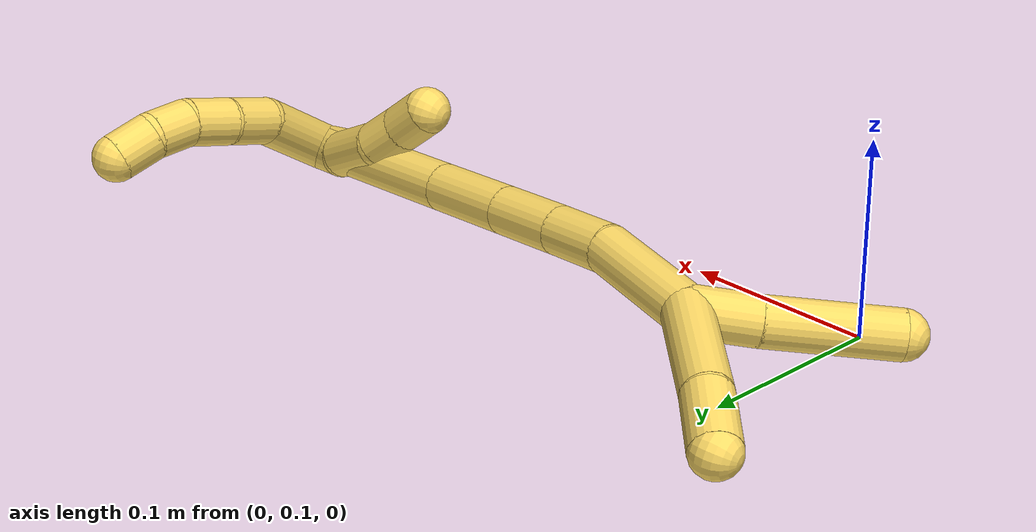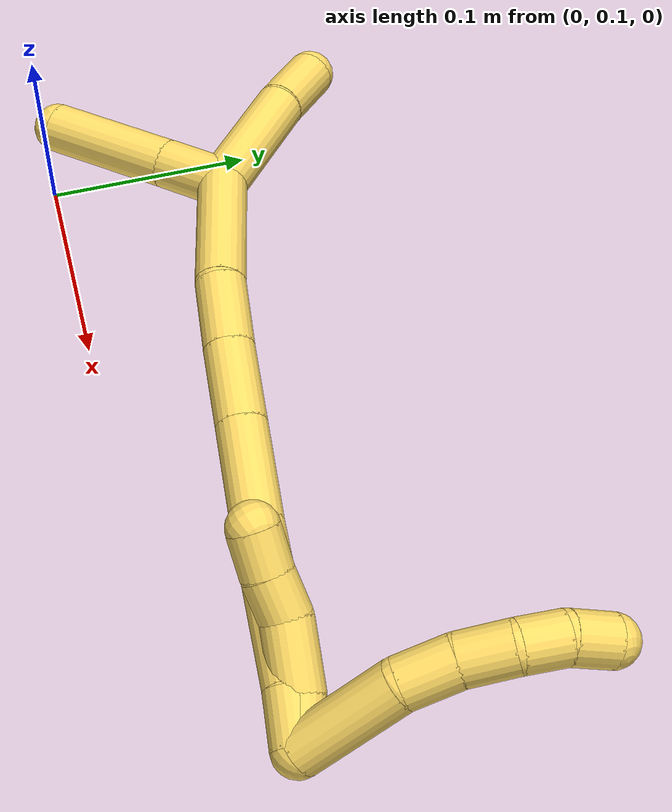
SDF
<sdf version="1.7">
 <world name="default">
  <model name="photoneo_s_sensor">
   <static>1</static>
   <pose>0 0 2 1.57079 1.57079 3.14159</pose>
   <link name="link">
    <inertial><mass>0.1</mass></inertial>
    <sensor name="sensor" type="depth">
     <update_rate>30</update_rate>
     <camera>
      <horizontal_fov>1.22</horizontal_fov>
      <image><width>1920</width><height>1200</height><format>B8G8R8</format></image>
      <clip><near>0.1</near><far>4</far></clip>
      <depth_camera><output>points</output></depth_camera>
     </camera>
     <plugin name="camera_plugin" filename="libgazebo_ros_depth_camera.so">
      <baseline>0.2</baseline>
      <alwaysOn>1</alwaysOn>
      <updateRate>0.0</updateRate>
      <cameraName>camera_ir</cameraName>
      <imageTopicName>/camera/color/image_raw</imageTopicName>
      <cameraInfoTopicName>/camera/color/camera_info</cameraInfoTopicName>
      <depthImageTopicName>/camera/depth/image_raw</depthImageTopicName>
      <depthImageCameraInfoTopicName>/camera/depth/camera_info</depthImageCameraInfoTopicName>
      <pointCloudTopicName>/camera/depth/points</pointCloudTopicName>
      <frameName>fr_optical</frameName>
      <pointCloudCutoff>0.1</pointCloudCutoff>
      <pointCloudCutoffMax>2.0</pointCloudCutoffMax>
      <distortionK1>0</distortionK1>
      <distortionK2>0</distortionK2>
      <distortionK3>0</distortionK3>
      <distortionT1>0</distortionT1>
      <distortionT2>0</distortionT2>
      <CxPrime>0</CxPrime>
      <Cx>0</Cx>
      <Cy>0</Cy>
      <focalLength>0</focalLength>
      <hackBaseline>0</hackBaseline>
     </plugin>
    </sensor>
   </link>
  </model>
  <model name="bin">
   <static>1</static>
   <link name="bottom">
    <collision name="collision-bottom">
     <pose>0 0 -0.01 0 -0 0</pose>
     <geometry><box><size>0.8 0.6 0.02</size></box></geometry>
     <surface>
      <friction><ode><mu>100</mu><mu2>100</mu2></ode></friction>
      <contact><collide_bitmask>65535</collide_bitmask></contact>
     </surface>
    </collision>
   </link>
   <link name="west_wall">
    <collision name="collision-west_wall">
     <pose>-0.41 0 0.1 0 -0 0</pose>
     <geometry><box><size>0.02 0.6 0.2</size></box></geometry>
     <surface>
      <friction><ode><mu>100</mu><mu2>100</mu2></ode></friction>
      <contact><collide_bitmask>65535</collide_bitmask></contact>
     </surface>
    </collision>
   </link>
   <link name="east_wall">
    <collision name="collision-east_wall">
     <pose>0.41 0 0.1 0 -0 0</pose>
     <geometry><box><size>0.02 0.6 0.2</size></box></geometry>
     <surface>
      <friction><ode><mu>100</mu><mu2>100</mu2></ode></friction>
      <contact><collide_bitmask>65535</collide_bitmask></contact>
     </surface>
    </collision>
   </link>
   <link name="south_wall">
    <collision name="collision-south_wall">
     <pose>0 -0.31 0.1 0 -0 0</pose>
     <geometry><box><size>0.8 0.02 0.2</size></box></geometry>
     <surface>
      <friction><ode><mu>100</mu><mu2>100</mu2></ode></friction>
      <contact><collide_bitmask>65535</collide_bitmask></contact>
     </surface>
    </collision>
   </link>
   <link name="north_wall">
    <collision name="collision-north_wall">
     <pose>0 0.31 0.1 0 -0 0</pose>
     <geometry><box><size>0.8 0.02 0.2</size></box></geometry>
     <surface>
      <friction><ode><mu>100</mu><mu2>100</mu2></ode></friction>
      <contact><collide_bitmask>65535</collide_bitmask></contact>
     </surface>
    </collision>
   </link>
  </model>
  <model name="5">
   <static>0</static>
   <link name="5">
    <collision name="collision-cylinder-e_1_2_8">
     <pose>-0.009611 0.02528 0.00412 -1.40923 -0.35896 0.306097</pose>
     <geometry><cylinder><radius>0.0125</radius><length>0.054714</length></cylinder></geometry>
     <surface>
      <friction><ode><mu>1.16</mu><mu2>1.16</mu2><slip1>0</slip1><slip2>0</slip2></ode></friction>
      <contact><ode><kp>1e+06</kp><kd>1</kd><max_vel>0</max_vel><min_depth>0.001</min_depth></ode></contact>
     </surface>
    </collision>
    <visual name="visual-cylinder-e_1_2_8">
     <pose>-0.009611 0.02528 0.00412 -1.40923 -0.35896 0.306097</pose>
     <geometry><cylinder><radius>0.0125</radius><length>0.054714</length></cylinder></geometry>
     <material><ambient>1 0.858824 0.4 1</ambient></material>
    </visual>
    <collision name="collision-cylinder-e_2_8_9">
     <pose>-0.019759 0.063544 0.010931 -1.36649 -0.040521 0.032988</pose>
     <geometry><cylinder><radius>0.0125</radius><length>0.026541</length></cylinder></geometry>
     <surface>
      <friction><ode><mu>1.16</mu><mu2>1.16</mu2><slip1>0</slip1><slip2>0</slip2></ode></friction>
      <contact><ode><kp>1e+06</kp><kd>1</kd><max_vel>0</max_vel><min_depth>0.001</min_depth></ode></contact>
     </surface>
    </collision>
    <visual name="visual-cylinder-e_2_8_9">
     <pose>-0.019759 0.063544 0.010931 -1.36649 -0.040521 0.032988</pose>
     <geometry><cylinder><radius>0.0125</radius><length>0.026541</length></cylinder></geometry>
     <material><ambient>1 0.858824 0.4 1</ambient></material>
    </visual>
    <collision name="collision-cylinder-e_3_9_10">
     <pose>-0.020076 0.088414 0.01796 -1.22078 0.017405 -0.012175</pose>
     <geometry><cylinder><radius>0.0125</radius><length>0.02531</length></cylinder></geometry>
     <surface>
      <friction><ode><mu>1.16</mu><mu2>1.16</mu2><slip1>0</slip1><slip2>0</slip2></ode></friction>
      <contact><ode><kp>1e+06</kp><kd>1</kd><max_vel>0</max_vel><min_depth>0.001</min_depth></ode></contact>
     </surface>
    </collision>
    <visual name="visual-cylinder-e_3_9_10">
     <pose>-0.020076 0.088414 0.01796 -1.22078 0.017405 -0.012175</pose>
     <geometry><cylinder><radius>0.0125</radius><length>0.02531</length></cylinder></geometry>
     <material><ambient>1 0.858824 0.4 1</ambient></material>
    </visual>
    <collision name="collision-cylinder-e_4_10_11">
     <pose>-0.016681 0.110424 0.024913 -1.31818 0.294756 -0.228994</pose>
     <geometry><cylinder><radius>0.0125</radius><length>0.021855</length></cylinder></geometry>
     <surface>
      <friction><ode><mu>1.16</mu><mu2>1.16</mu2><slip1>0</slip1><slip2>0</slip2></ode></friction>
      <contact><ode><kp>1e+06</kp><kd>1</kd><max_vel>0</max_vel><min_depth>0.001</min_depth></ode></contact>
     </surface>
    </collision>
    <visual name="visual-cylinder-e_4_10_11">
     <pose>-0.016681 0.110424 0.024913 -1.31818 0.294756 -0.228994</pose>
     <geometry><cylinder><radius>0.0125</radius><length>0.021855</length></cylinder></geometry>
     <material><ambient>1 0.858824 0.4 1</ambient></material>
    </visual>
    <collision name="collision-cylinder-e_5_11_6">
     <pose>-0.007601 0.128936 0.030871 -1.19133 0.579271 -0.39862</pose>
     <geometry><cylinder><radius>0.0125</radius><length>0.021579</length></cylinder></geometry>
     <surface>
      <friction><ode><mu>1.16</mu><mu2>1.16</mu2><slip1>0</slip1><slip2>0</slip2></ode></friction>
      <contact><ode><kp>1e+06</kp><kd>1</kd><max_vel>0</max_vel><min_depth>0.001</min_depth></ode></contact>
     </surface>
    </collision>
    <visual name="visual-cylinder-e_5_11_6">
     <pose>-0.007601 0.128936 0.030871 -1.19133 0.579271 -0.39862</pose>
     <geometry><cylinder><radius>0.0125</radius><length>0.021579</length></cylinder></geometry>
     <material><ambient>1 0.858824 0.4 1</ambient></material>
    </visual>
    <collision name="collision-cylinder-e_1_2_12">
     <pose>-0.002332 0.006061 -0.009933 -2.59375 -0.197763 0.678801</pose>
     <geometry><cylinder><radius>0.0125</radius><length>0.023735</length></cylinder></geometry>
     <surface>
      <friction><ode><mu>1.16</mu><mu2>1.16</mu2><slip1>0</slip1><slip2>0</slip2></ode></friction>
      <contact><ode><kp>1e+06</kp><kd>1</kd><max_vel>0</max_vel><min_depth>0.001</min_depth></ode></contact>
     </surface>
    </collision>
    <visual name="visual-cylinder-e_1_2_12">
     <pose>-0.002332 0.006061 -0.009933 -2.59375 -0.197763 0.678801</pose>
     <geometry><cylinder><radius>0.0125</radius><length>0.023735</length></cylinder></geometry>
     <material><ambient>1 0.858824 0.4 1</ambient></material>
    </visual>
    <collision name="collision-cylinder-e_2_12_13">
     <pose>-0.012939 0.018451 -0.033158 -2.69718 -0.512125 1.71763</pose>
     <geometry><cylinder><radius>0.0125</radius><length>0.033776</length></cylinder></geometry>
     <surface>
      <friction><ode><mu>1.16</mu><mu2>1.16</mu2><slip1>0</slip1><slip2>0</slip2></ode></friction>
      <contact><ode><kp>1e+06</kp><kd>1</kd><max_vel>0</max_vel><min_depth>0.001</min_depth></ode></contact>
     </surface>
    </collision>
    <visual name="visual-cylinder-e_2_12_13">
     <pose>-0.012939 0.018451 -0.033158 -2.69718 -0.512125 1.71763</pose>
     <geometry><cylinder><radius>0.0125</radius><length>0.033776</length></cylinder></geometry>
     <material><ambient>1 0.858824 0.4 1</ambient></material>
    </visual>
    <collision name="collision-cylinder-e_3_13_14">
     <pose>-0.028772 0.02609 -0.05387 -2.96685 -0.786826 2.72562</pose>
     <geometry><cylinder><radius>0.0125</radius><length>0.021344</length></cylinder></geometry>
     <surface>
      <friction><ode><mu>1.16</mu><mu2>1.16</mu2><slip1>0</slip1><slip2>0</slip2></ode></friction>
      <contact><ode><kp>1e+06</kp><kd>1</kd><max_vel>0</max_vel><min_depth>0.001</min_depth></ode></contact>
     </surface>
    </collision>
    <visual name="visual-cylinder-e_3_13_14">
     <pose>-0.028772 0.02609 -0.05387 -2.96685 -0.786826 2.72562</pose>
     <geometry><cylinder><radius>0.0125</radius><length>0.021344</length></cylinder></geometry>
     <material><ambient>1 0.858824 0.4 1</ambient></material>
    </visual>
    <collision name="collision-cylinder-e_4_14_5">
     <pose>-0.043695 0.029753 -0.0685 -2.82605 -0.770831 2.39418</pose>
     <geometry><cylinder><radius>0.0125</radius><length>0.021145</length></cylinder></geometry>
     <surface>
      <friction><ode><mu>1.16</mu><mu2>1.16</mu2><slip1>0</slip1><slip2>0</slip2></ode></friction>
      <contact><ode><kp>1e+06</kp><kd>1</kd><max_vel>0</max_vel><min_depth>0.001</min_depth></ode></contact>
     </surface>
    </collision>
    <visual name="visual-cylinder-e_4_14_5">
     <pose>-0.043695 0.029753 -0.0685 -2.82605 -0.770831 2.39418</pose>
     <geometry><cylinder><radius>0.0125</radius><length>0.021145</length></cylinder></geometry>
     <material><ambient>1 0.858824 0.4 1</ambient></material>
    </visual>
    <collision name="collision-cylinder-e_1_2_15">
     <pose>-0.003327 0.005281 -0.012017 -2.72755 -0.248274 1.07214</pose>
     <geometry><cylinder><radius>0.0125</radius><length>0.027082</length></cylinder></geometry>
     <surface>
      <friction><ode><mu>1.16</mu><mu2>1.16</mu2><slip1>0</slip1><slip2>0</slip2></ode></friction>
      <contact><ode><kp>1e+06</kp><kd>1</kd><max_vel>0</max_vel><min_depth>0.001</min_depth></ode></contact>
     </surface>
    </collision>
    <visual name="visual-cylinder-e_1_2_15">
     <pose>-0.003327 0.005281 -0.012017 -2.72755 -0.248274 1.07214</pose>
     <geometry><cylinder><radius>0.0125</radius><length>0.027082</length></cylinder></geometry>
     <material><ambient>1 0.858824 0.4 1</ambient></material>
    </visual>
    <collision name="collision-cylinder-e_2_15_16">
     <pose>-0.012078 0.023255 -0.061125 -2.81185 -0.137457 0.784565</pose>
     <geometry><cylinder><radius>0.0125</radius><length>0.079153</length></cylinder></geometry>
     <surface>
      <friction><ode><mu>1.16</mu><mu2>1.16</mu2><slip1>0</slip1><slip2>0</slip2></ode></friction>
      <contact><ode><kp>1e+06</kp><kd>1</kd><max_vel>0</max_vel><min_depth>0.001</min_depth></ode></contact>
     </surface>
    </collision>
    <visual name="visual-cylinder-e_2_15_16">
     <pose>-0.012078 0.023255 -0.061125 -2.81185 -0.137457 0.784565</pose>
     <geometry><cylinder><radius>0.0125</radius><length>0.079153</length></cylinder></geometry>
     <material><ambient>1 0.858824 0.4 1</ambient></material>
    </visual>
    <collision name="collision-cylinder-e_3_16_17">
     <pose>-0.021216 0.044862 -0.121637 -2.77798 -0.147185 0.762814</pose>
     <geometry><cylinder><radius>0.0125</radius><length>0.050665</length></cylinder></geometry>
     <surface>
      <friction><ode><mu>1.16</mu><mu2>1.16</mu2><slip1>0</slip1><slip2>0</slip2></ode></friction>
      <contact><ode><kp>1e+06</kp><kd>1</kd><max_vel>0</max_vel><min_depth>0.001</min_depth></ode></contact>
     </surface>
    </collision>
    <visual name="visual-cylinder-e_3_16_17">
     <pose>-0.021216 0.044862 -0.121637 -2.77798 -0.147185 0.762814</pose>
     <geometry><cylinder><radius>0.0125</radius><length>0.050665</length></cylinder></geometry>
     <material><ambient>1 0.858824 0.4 1</ambient></material>
    </visual>
    <collision name="collision-cylinder-e_4_17_18">
     <pose>-0.027911 0.061003 -0.164095 -2.77869 -0.145275 0.755153</pose>
     <geometry><cylinder><radius>0.0125</radius><length>0.041163</length></cylinder></geometry>
     <surface>
      <friction><ode><mu>1.16</mu><mu2>1.16</mu2><slip1>0</slip1><slip2>0</slip2></ode></friction>
      <contact><ode><kp>1e+06</kp><kd>1</kd><max_vel>0</max_vel><min_depth>0.001</min_depth></ode></contact>
     </surface>
    </collision>
    <visual name="visual-cylinder-e_4_17_18">
     <pose>-0.027911 0.061003 -0.164095 -2.77869 -0.145275 0.755153</pose>
     <geometry><cylinder><radius>0.0125</radius><length>0.041163</length></cylinder></geometry>
     <material><ambient>1 0.858824 0.4 1</ambient></material>
    </visual>
    <collision name="collision-cylinder-e_5_18_19">
     <pose>-0.033491 0.075059 -0.199821 -2.75329 -0.143257 0.699786</pose>
     <geometry><cylinder><radius>0.0125</radius><length>0.036434</length></cylinder></geometry>
     <surface>
      <friction><ode><mu>1.16</mu><mu2>1.16</mu2><slip1>0</slip1><slip2>0</slip2></ode></friction>
      <contact><ode><kp>1e+06</kp><kd>1</kd><max_vel>0</max_vel><min_depth>0.001</min_depth></ode></contact>
     </surface>
    </collision>
    <visual name="visual-cylinder-e_5_18_19">
     <pose>-0.033491 0.075059 -0.199821 -2.75329 -0.143257 0.699786</pose>
     <geometry><cylinder><radius>0.0125</radius><length>0.036434</length></cylinder></geometry>
     <material><ambient>1 0.858824 0.4 1</ambient></material>
    </visual>
    <collision name="collision-cylinder-e_6_19_1">
     <pose>-0.034814 0.096727 -0.245677 -2.67092 0.039007 -0.162342</pose>
     <geometry><cylinder><radius>0.0125</radius><length>0.065503</length></cylinder></geometry>
     <surface>
      <friction><ode><mu>1.16</mu><mu2>1.16</mu2><slip1>0</slip1><slip2>0</slip2></ode></friction>
      <contact><ode><kp>1e+06</kp><kd>1</kd><max_vel>0</max_vel><min_depth>0.001</min_depth></ode></contact>
     </surface>
    </collision>
    <visual name="visual-cylinder-e_6_19_1">
     <pose>-0.034814 0.096727 -0.245677 -2.67092 0.039007 -0.162342</pose>
     <geometry><cylinder><radius>0.0125</radius><length>0.065503</length></cylinder></geometry>
     <material><ambient>1 0.858824 0.4 1</ambient></material>
    </visual>
    <collision name="collision-cylinder-e_1_1_20">
     <pose>-0.026735 0.136748 -0.294437 -2.23203 0.210073 -0.424711</pose>
     <geometry><cylinder><radius>0.0125</radius><length>0.065243</length></cylinder></geometry>
     <surface>
      <friction><ode><mu>1.16</mu><mu2>1.16</mu2><slip1>0</slip1><slip2>0</slip2></ode></friction>
      <contact><ode><kp>1e+06</kp><kd>1</kd><max_vel>0</max_vel><min_depth>0.001</min_depth></ode></contact>
     </surface>
    </collision>
    <visual name="visual-cylinder-e_1_1_20">
     <pose>-0.026735 0.136748 -0.294437 -2.23203 0.210073 -0.424711</pose>
     <geometry><cylinder><radius>0.0125</radius><length>0.065243</length></cylinder></geometry>
     <material><ambient>1 0.858824 0.4 1</ambient></material>
    </visual>
    <collision name="collision-cylinder-e_2_20_4">
     <pose>-0.014054 0.174815 -0.324099 -2.23407 0.34505 -0.686332</pose>
     <geometry><cylinder><radius>0.0125</radius><length>0.034757</length></cylinder></geometry>
     <surface>
      <friction><ode><mu>1.16</mu><mu2>1.16</mu2><slip1>0</slip1><slip2>0</slip2></ode></friction>
      <contact><ode><kp>1e+06</kp><kd>1</kd><max_vel>0</max_vel><min_depth>0.001</min_depth></ode></contact>
     </surface>
    </collision>
    <visual name="visual-cylinder-e_2_20_4">
     <pose>-0.014054 0.174815 -0.324099 -2.23407 0.34505 -0.686332</pose>
     <geometry><cylinder><radius>0.0125</radius><length>0.034757</length></cylinder></geometry>
     <material><ambient>1 0.858824 0.4 1</ambient></material>
    </visual>
    <collision name="collision-cylinder-e_1_1_21">
     <pose>-0.034623 0.102656 -0.289066 2.58182 -0.064603 -0.2239</pose>
     <geometry><cylinder><radius>0.0125</radius><length>0.033635</length></cylinder></geometry>
     <surface>
      <friction><ode><mu>1.16</mu><mu2>1.16</mu2><slip1>0</slip1><slip2>0</slip2></ode></friction>
      <contact><ode><kp>1e+06</kp><kd>1</kd><max_vel>0</max_vel><min_depth>0.001</min_depth></ode></contact>
     </surface>
    </collision>
    <visual name="visual-cylinder-e_1_1_21">
     <pose>-0.034623 0.102656 -0.289066 2.58182 -0.064603 -0.2239</pose>
     <geometry><cylinder><radius>0.0125</radius><length>0.033635</length></cylinder></geometry>
     <material><ambient>1 0.858824 0.4 1</ambient></material>
    </visual>
    <collision name="collision-cylinder-e_2_21_3">
     <pose>-0.039198 0.075326 -0.330666 2.5494 -0.105359 -0.342304</pose>
     <geometry><cylinder><radius>0.0125</radius><length>0.066365</length></cylinder></geometry>
     <surface>
      <friction><ode><mu>1.16</mu><mu2>1.16</mu2><slip1>0</slip1><slip2>0</slip2></ode></friction>
      <contact><ode><kp>1e+06</kp><kd>1</kd><max_vel>0</max_vel><min_depth>0.001</min_depth></ode></contact>
     </surface>
    </collision>
    <visual name="visual-cylinder-e_2_21_3">
     <pose>-0.039198 0.075326 -0.330666 2.5494 -0.105359 -0.342304</pose>
     <geometry><cylinder><radius>0.0125</radius><length>0.066365</length></cylinder></geometry>
     <material><ambient>1 0.858824 0.4 1</ambient></material>
    </visual>
    <collision name="collision-sphere-3">
     <pose>-0.042688 0.056907 -0.358046 0 -0 0</pose>
     <geometry><sphere><radius>0.0125</radius></sphere></geometry>
     <surface>
      <friction><ode><mu>1.16</mu><mu2>1.16</mu2><slip1>0</slip1><slip2>0</slip2></ode></friction>
      <contact><ode><kp>1e+06</kp><kd>1</kd><max_vel>0</max_vel><min_depth>0.001</min_depth></ode></contact>
     </surface>
    </collision>
    <visual name="visual-sphere-3">
     <pose>-0.042688 0.056907 -0.358046 0 -0 0</pose>
     <geometry><sphere><radius>0.0125</radius></sphere></geometry>
     <material><ambient>1 0.858824 0.4 1</ambient></material>
    </visual>
    <collision name="collision-sphere-21">
     <pose>-0.035709 0.093745 -0.303287 0 -0 0</pose>
     <geometry><sphere><radius>0.0125</radius></sphere></geometry>
     <surface>
      <friction><ode><mu>1.16</mu><mu2>1.16</mu2><slip1>0</slip1><slip2>0</slip2></ode></friction>
      <contact><ode><kp>1e+06</kp><kd>1</kd><max_vel>0</max_vel><min_depth>0.001</min_depth></ode></contact>
     </surface>
    </collision>
    <visual name="visual-sphere-21">
     <pose>-0.035709 0.093745 -0.303287 0 -0 0</pose>
     <geometry><sphere><radius>0.0125</radius></sphere></geometry>
     <material><ambient>1 0.858824 0.4 1</ambient></material>
    </visual>
    <collision name="collision-sphere-4">
     <pose>-0.008176 0.187701 -0.334168 0 -0 0</pose>
     <geometry><sphere><radius>0.0125</radius></sphere></geometry>
     <surface>
      <friction><ode><mu>1.16</mu><mu2>1.16</mu2><slip1>0</slip1><slip2>0</slip2></ode></friction>
      <contact><ode><kp>1e+06</kp><kd>1</kd><max_vel>0</max_vel><min_depth>0.001</min_depth></ode></contact>
     </surface>
    </collision>
    <visual name="visual-sphere-4">
     <pose>-0.008176 0.187701 -0.334168 0 -0 0</pose>
     <geometry><sphere><radius>0.0125</radius></sphere></geometry>
     <material><ambient>1 0.858824 0.4 1</ambient></material>
    </visual>
    <collision name="collision-sphere-20">
     <pose>-0.019932 0.161928 -0.314029 0 -0 0</pose>
     <geometry><sphere><radius>0.0125</radius></sphere></geometry>
     <surface>
      <friction><ode><mu>1.16</mu><mu2>1.16</mu2><slip1>0</slip1><slip2>0</slip2></ode></friction>
      <contact><ode><kp>1e+06</kp><kd>1</kd><max_vel>0</max_vel><min_depth>0.001</min_depth></ode></contact>
     </surface>
    </collision>
    <visual name="visual-sphere-20">
     <pose>-0.019932 0.161928 -0.314029 0 -0 0</pose>
     <geometry><sphere><radius>0.0125</radius></sphere></geometry>
     <material><ambient>1 0.858824 0.4 1</ambient></material>
    </visual>
    <collision name="collision-sphere-6">
     <pose>-0.001694 0.137323 0.034215 0 -0 0</pose>
     <geometry><sphere><radius>0.0125</radius></sphere></geometry>
     <surface>
      <friction><ode><mu>1.16</mu><mu2>1.16</mu2><slip1>0</slip1><slip2>0</slip2></ode></friction>
      <contact><ode><kp>1e+06</kp><kd>1</kd><max_vel>0</max_vel><min_depth>0.001</min_depth></ode></contact>
     </surface>
    </collision>
    <visual name="visual-sphere-6">
     <pose>-0.001694 0.137323 0.034215 0 -0 0</pose>
     <geometry><sphere><radius>0.0125</radius></sphere></geometry>
     <material><ambient>1 0.858824 0.4 1</ambient></material>
    </visual>
    <collision name="collision-sphere-11">
     <pose>-0.013507 0.120548 0.027526 0 -0 0</pose>
     <geometry><sphere><radius>0.0125</radius></sphere></geometry>
     <surface>
      <friction><ode><mu>1.16</mu><mu2>1.16</mu2><slip1>0</slip1><slip2>0</slip2></ode></friction>
      <contact><ode><kp>1e+06</kp><kd>1</kd><max_vel>0</max_vel><min_depth>0.001</min_depth></ode></contact>
     </surface>
    </collision>
    <visual name="visual-sphere-11">
     <pose>-0.013507 0.120548 0.027526 0 -0 0</pose>
     <geometry><sphere><radius>0.0125</radius></sphere></geometry>
     <material><ambient>1 0.858824 0.4 1</ambient></material>
    </visual>
    <collision name="collision-sphere-10">
     <pose>-0.019856 0.1003 0.022299 0 -0 0</pose>
     <geometry><sphere><radius>0.0125</radius></sphere></geometry>
     <surface>
      <friction><ode><mu>1.16</mu><mu2>1.16</mu2><slip1>0</slip1><slip2>0</slip2></ode></friction>
      <contact><ode><kp>1e+06</kp><kd>1</kd><max_vel>0</max_vel><min_depth>0.001</min_depth></ode></contact>
     </surface>
    </collision>
    <visual name="visual-sphere-10">
     <pose>-0.019856 0.1003 0.022299 0 -0 0</pose>
     <geometry><sphere><radius>0.0125</radius></sphere></geometry>
     <material><ambient>1 0.858824 0.4 1</ambient></material>
    </visual>
    <collision name="collision-sphere-9">
     <pose>-0.020296 0.076528 0.013621 0 -0 0</pose>
     <geometry><sphere><radius>0.0125</radius></sphere></geometry>
     <surface>
      <friction><ode><mu>1.16</mu><mu2>1.16</mu2><slip1>0</slip1><slip2>0</slip2></ode></friction>
      <contact><ode><kp>1e+06</kp><kd>1</kd><max_vel>0</max_vel><min_depth>0.001</min_depth></ode></contact>
     </surface>
    </collision>
    <visual name="visual-sphere-9">
     <pose>-0.020296 0.076528 0.013621 0 -0 0</pose>
     <geometry><sphere><radius>0.0125</radius></sphere></geometry>
     <material><ambient>1 0.858824 0.4 1</ambient></material>
    </visual>
    <collision name="collision-sphere-2">
     <geometry><sphere><radius>0.0125</radius></sphere></geometry>
     <surface>
      <friction><ode><mu>1.16</mu><mu2>1.16</mu2><slip1>0</slip1><slip2>0</slip2></ode></friction>
      <contact><ode><kp>1e+06</kp><kd>1</kd><max_vel>0</max_vel><min_depth>0.001</min_depth></ode></contact>
     </surface>
    </collision>
    <visual name="visual-sphere-2">
     <geometry><sphere><radius>0.0125</radius></sphere></geometry>
     <material><ambient>1 0.858824 0.4 1</ambient></material>
    </visual>
    <collision name="collision-sphere-19">
     <pose>-0.036092 0.081886 -0.216509 0 -0 0</pose>
     <geometry><sphere><radius>0.0125</radius></sphere></geometry>
     <surface>
      <friction><ode><mu>1.16</mu><mu2>1.16</mu2><slip1>0</slip1><slip2>0</slip2></ode></friction>
      <contact><ode><kp>1e+06</kp><kd>1</kd><max_vel>0</max_vel><min_depth>0.001</min_depth></ode></contact>
     </surface>
    </collision>
    <visual name="visual-sphere-19">
     <pose>-0.036092 0.081886 -0.216509 0 -0 0</pose>
     <geometry><sphere><radius>0.0125</radius></sphere></geometry>
     <material><ambient>1 0.858824 0.4 1</ambient></material>
    </visual>
    <collision name="collision-sphere-8">
     <pose>-0.019221 0.05056 0.008241 0 -0 0</pose>
     <geometry><sphere><radius>0.0125</radius></sphere></geometry>
     <surface>
      <friction><ode><mu>1.16</mu><mu2>1.16</mu2><slip1>0</slip1><slip2>0</slip2></ode></friction>
      <contact><ode><kp>1e+06</kp><kd>1</kd><max_vel>0</max_vel><min_depth>0.001</min_depth></ode></contact>
     </surface>
    </collision>
    <visual name="visual-sphere-8">
     <pose>-0.019221 0.05056 0.008241 0 -0 0</pose>
     <geometry><sphere><radius>0.0125</radius></sphere></geometry>
     <material><ambient>1 0.858824 0.4 1</ambient></material>
    </visual>
    <collision name="collision-sphere-12">
     <pose>-0.004663 0.012121 -0.019867 0 -0 0</pose>
     <geometry><sphere><radius>0.0125</radius></sphere></geometry>
     <surface>
      <friction><ode><mu>1.16</mu><mu2>1.16</mu2><slip1>0</slip1><slip2>0</slip2></ode></friction>
      <contact><ode><kp>1e+06</kp><kd>1</kd><max_vel>0</max_vel><min_depth>0.001</min_depth></ode></contact>
     </surface>
    </collision>
    <visual name="visual-sphere-12">
     <pose>-0.004663 0.012121 -0.019867 0 -0 0</pose>
     <geometry><sphere><radius>0.0125</radius></sphere></geometry>
     <material><ambient>1 0.858824 0.4 1</ambient></material>
    </visual>
    <collision name="collision-sphere-13">
     <pose>-0.021215 0.02478 -0.046449 0 -0 0</pose>
     <geometry><sphere><radius>0.0125</radius></sphere></geometry>
     <surface>
      <friction><ode><mu>1.16</mu><mu2>1.16</mu2><slip1>0</slip1><slip2>0</slip2></ode></friction>
      <contact><ode><kp>1e+06</kp><kd>1</kd><max_vel>0</max_vel><min_depth>0.001</min_depth></ode></contact>
     </surface>
    </collision>
    <visual name="visual-sphere-13">
     <pose>-0.021215 0.02478 -0.046449 0 -0 0</pose>
     <geometry><sphere><radius>0.0125</radius></sphere></geometry>
     <material><ambient>1 0.858824 0.4 1</ambient></material>
    </visual>
    <collision name="collision-sphere-14">
     <pose>-0.036329 0.0274 -0.061291 0 -0 0</pose>
     <geometry><sphere><radius>0.0125</radius></sphere></geometry>
     <surface>
      <friction><ode><mu>1.16</mu><mu2>1.16</mu2><slip1>0</slip1><slip2>0</slip2></ode></friction>
      <contact><ode><kp>1e+06</kp><kd>1</kd><max_vel>0</max_vel><min_depth>0.001</min_depth></ode></contact>
     </surface>
    </collision>
    <visual name="visual-sphere-14">
     <pose>-0.036329 0.0274 -0.061291 0 -0 0</pose>
     <geometry><sphere><radius>0.0125</radius></sphere></geometry>
     <material><ambient>1 0.858824 0.4 1</ambient></material>
    </visual>
    <collision name="collision-sphere-5">
     <pose>-0.051061 0.032107 -0.07571 0 -0 0</pose>
     <geometry><sphere><radius>0.0125</radius></sphere></geometry>
     <surface>
      <friction><ode><mu>1.16</mu><mu2>1.16</mu2><slip1>0</slip1><slip2>0</slip2></ode></friction>
      <contact><ode><kp>1e+06</kp><kd>1</kd><max_vel>0</max_vel><min_depth>0.001</min_depth></ode></contact>
     </surface>
    </collision>
    <visual name="visual-sphere-5">
     <pose>-0.051061 0.032107 -0.07571 0 -0 0</pose>
     <geometry><sphere><radius>0.0125</radius></sphere></geometry>
     <material><ambient>1 0.858824 0.4 1</ambient></material>
    </visual>
    <collision name="collision-sphere-15">
     <pose>-0.006655 0.010561 -0.024034 0 -0 0</pose>
     <geometry><sphere><radius>0.0125</radius></sphere></geometry>
     <surface>
      <friction><ode><mu>1.16</mu><mu2>1.16</mu2><slip1>0</slip1><slip2>0</slip2></ode></friction>
      <contact><ode><kp>1e+06</kp><kd>1</kd><max_vel>0</max_vel><min_depth>0.001</min_depth></ode></contact>
     </surface>
    </collision>
    <visual name="visual-sphere-15">
     <pose>-0.006655 0.010561 -0.024034 0 -0 0</pose>
     <geometry><sphere><radius>0.0125</radius></sphere></geometry>
     <material><ambient>1 0.858824 0.4 1</ambient></material>
    </visual>
    <collision name="collision-sphere-16">
     <pose>-0.017501 0.03595 -0.098216 0 -0 0</pose>
     <geometry><sphere><radius>0.0125</radius></sphere></geometry>
     <surface>
      <friction><ode><mu>1.16</mu><mu2>1.16</mu2><slip1>0</slip1><slip2>0</slip2></ode></friction>
      <contact><ode><kp>1e+06</kp><kd>1</kd><max_vel>0</max_vel><min_depth>0.001</min_depth></ode></contact>
     </surface>
    </collision>
    <visual name="visual-sphere-16">
     <pose>-0.017501 0.03595 -0.098216 0 -0 0</pose>
     <geometry><sphere><radius>0.0125</radius></sphere></geometry>
     <material><ambient>1 0.858824 0.4 1</ambient></material>
    </visual>
    <collision name="collision-sphere-17">
     <pose>-0.024931 0.053774 -0.145057 0 -0 0</pose>
     <geometry><sphere><radius>0.0125</radius></sphere></geometry>
     <surface>
      <friction><ode><mu>1.16</mu><mu2>1.16</mu2><slip1>0</slip1><slip2>0</slip2></ode></friction>
      <contact><ode><kp>1e+06</kp><kd>1</kd><max_vel>0</max_vel><min_depth>0.001</min_depth></ode></contact>
     </surface>
    </collision>
    <visual name="visual-sphere-17">
     <pose>-0.024931 0.053774 -0.145057 0 -0 0</pose>
     <geometry><sphere><radius>0.0125</radius></sphere></geometry>
     <material><ambient>1 0.858824 0.4 1</ambient></material>
    </visual>
    <collision name="collision-sphere-18">
     <pose>-0.03089 0.068232 -0.183133 0 -0 0</pose>
     <geometry><sphere><radius>0.0125</radius></sphere></geometry>
     <surface>
      <friction><ode><mu>1.16</mu><mu2>1.16</mu2><slip1>0</slip1><slip2>0</slip2></ode></friction>
      <contact><ode><kp>1e+06</kp><kd>1</kd><max_vel>0</max_vel><min_depth>0.001</min_depth></ode></contact>
     </surface>
    </collision>
    <visual name="visual-sphere-18">
     <pose>-0.03089 0.068232 -0.183133 0 -0 0</pose>
     <geometry><sphere><radius>0.0125</radius></sphere></geometry>
     <material><ambient>1 0.858824 0.4 1</ambient></material>
    </visual>
    <collision name="collision-sphere-1">
     <pose>-0.033537 0.111568 -0.274845 0 -0 0</pose>
     <geometry><sphere><radius>0.0125</radius></sphere></geometry>
     <surface>
      <friction><ode><mu>1.16</mu><mu2>1.16</mu2><slip1>0</slip1><slip2>0</slip2></ode></friction>
      <contact><ode><kp>1e+06</kp><kd>1</kd><max_vel>0</max_vel><min_depth>0.001</min_depth></ode></contact>
     </surface>
    </collision>
    <visual name="visual-sphere-1">
     <pose>-0.033537 0.111568 -0.274845 0 -0 0</pose>
     <geometry><sphere><radius>0.0125</radius></sphere></geometry>
     <material><ambient>1 0.858824 0.4 1</ambient></material>
    </visual>
    <inertial>
     <pose>-0.022515 0.068992 -0.140492 0 -0 0</pose>
     <mass>0.75</mass>
     <inertia><ixx>0.000181</ixx><ixy>0</ixy><ixz>0</ixz><iyy>-4e-05</iyy><iyz>0</iyz><izz>-8.9e-05</izz></inertia>
    </inertial>
   </link>
   <pose>0.331861 0.15006 0.012146 0.972007 1.32708 1.22848</pose>
  </model>
 </world>
</sdf>
